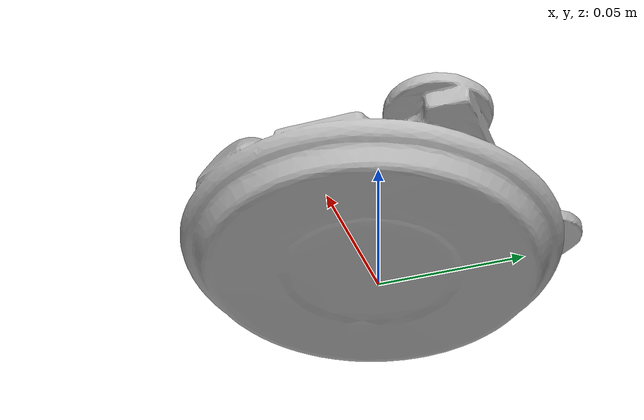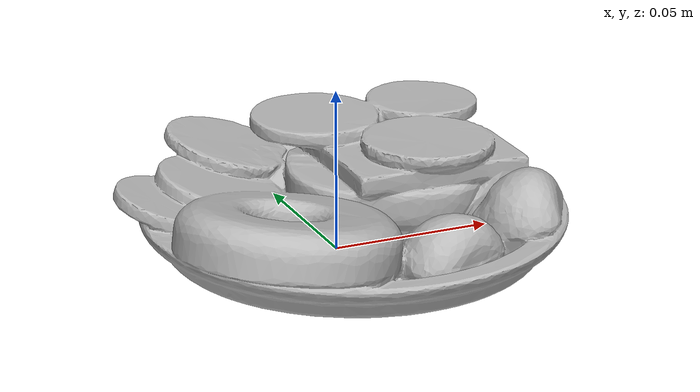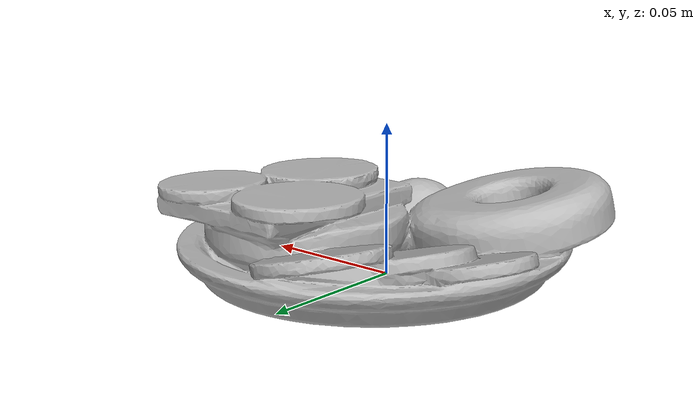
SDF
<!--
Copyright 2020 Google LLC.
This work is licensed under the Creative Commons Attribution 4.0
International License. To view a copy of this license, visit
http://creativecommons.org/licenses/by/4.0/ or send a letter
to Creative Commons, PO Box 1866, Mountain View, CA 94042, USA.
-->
<?xml version="1.0" ?>
<sdf version="1.6">
  <model name="BAGEL_WITH_CHEESE">
    <link name="link_0">
      <visual name="visual">
        <geometry>
          <mesh>
            <uri>meshes/model.obj</uri>
          </mesh>
        </geometry>
      </visual>
      <collision name="collision_0">
        <geometry>
          <mesh>
            <uri>meshes/model.obj</uri>
          </mesh>
        </geometry>
      </collision>
    </link>
  </model>
</sdf>
